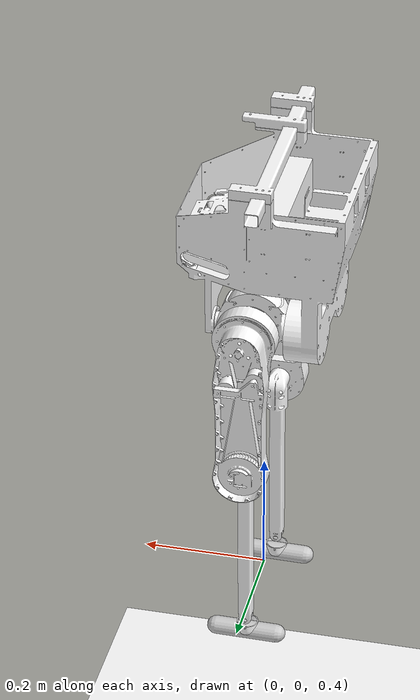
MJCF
<mujoco model="biped">
  <compiler angle="radian" meshdir="meshes" autolimits="true"/>
  <option iterations="3" ls_iterations="5" integrator="Euler">
    <flag eulerdamp="disable"/>
  </option>
  <default/>

  <visual>
    <headlight diffuse=".8 .8 .8" ambient=".2 .2 .2" specular="1 1 1"/>
    <rgba force="1 0 0 1"/>
    <global azimuth="120" elevation="-20"/>
    <map force="0.01"/>
    <scale forcewidth="0.3" contactwidth="0.5" contactheight="0.2"/>
    <quality shadowsize="8192"/>
  </visual>
  <asset>
    <mesh name="base_link" file="base_link.STL"/>
    <mesh name="R_SHOULDER" file="R_SHOULDER.STL"/>
    <mesh name="R_UPPER_LEG" file="R_UPPER_LEG.STL"/>
    <mesh name="R_LOWER_LEG" file="R_LOWER_LEG.STL"/>
    <mesh name="R_FOOT" file="R_FOOT.STL"/>
    <mesh name="L_SHOULDER" file="L_SHOULDER.STL"/>
    <mesh name="L_UPPER_LEG" file="L_UPPER_LEG.STL"/>
    <mesh name="L_LOWER_LEG" file="L_LOWER_LEG.STL"/>
    <mesh name="L_FOOT" file="L_FOOT.STL"/>
    <texture type="skybox" builtin="gradient" rgb1="1 1 1" rgb2="1 1 1" width="800" height="800"/>
    <texture type="2d" name="groundplane" builtin="checker" mark="edge" rgb1="1 1 1" rgb2="1 1 1" markrgb="0 0 0"
      width="300" height="300"/>
    <material name="groundplane" texture="groundplane" texuniform="true" texrepeat="5 5" reflectance="0"/>

  </asset>
      <sensor>
    <gyro name="gyro" site="imu_location_vectornav" />
    <accelerometer name="accelerometer" site="imu_location_vectornav" />
    <velocimeter site="imu_location" name="local_linvel"/>
    <framezaxis objtype="site" objname="imu_location" name="upvector"/>
    <framexaxis objtype="site" objname="imu_location" name="forwardvector"/>
    <framelinvel objtype="site" objname="imu_location" name="global_linvel"/>
    <frameangvel objtype="site" objname="imu_location" name="global_angvel"/>
    <framepos objtype="site" objname="imu_location" name="position"/>
    <framequat objtype="site" objname="imu_location" name="orientation"/>
    <framelinvel objtype="site" objname="l_foot" name="l_foot_global_linvel"/>
    <framelinvel objtype="site" objname="r_foot" name="r_foot_global_linvel"/>
    <framexaxis objtype="site" objname="l_foot" name="l_foot_upvector"/>
    <framexaxis objtype="site" objname="r_foot" name="r_foot_upvector"/>
    <framepos objtype="site" objname="l_foot" name="l_foot_pos"/>
    <framepos objtype="site" objname="r_foot" name="r_foot_pos"/>

  </sensor>

  <worldbody>
    <geom name="floor" size="0 0 0.01" type="plane" material="groundplane" contype="1" conaffinity="0" priority="1" friction="0.6" condim="3"/>

    <camera name="track" pos="1.805 -2.105 1.0" xyaxes="0.814 0.580 0.000 -0.140 0.196 0.971"/>

    <body name="base_link" pos="0.0 0.0 1.0">
    <camera name="front" pos="1.210 -0.435 0.32" xyaxes="0.342 0.940 0.000 -0.321 0.117 0.940" mode="trackcom"/>
    <inertial pos="-0.025692 0 0.025162" quat="1. 0. 0. 0." mass="4.808222" diaginertia="0.056665 0.046196 0.042241" />
    <geom name="base_link" type="mesh" contype="0" conaffinity="0" rgba="1 1 1 1" mesh="base_link"/>
    <joint armature="0" damping="0" limited="false" name="root" pos="0 0 0" stiffness="0" type="free"/>
    <site name="imu_location" pos="0 0 0" euler="0 0 0" size="0.01" type="sphere" rgba="1 0 0 1"/>
    <site name="imu_location_vectornav" pos="0 0 0" euler="-3.141592 0 0" size="0.01" type="sphere" rgba="1 0 0 1"/>

    <body name="L_SHOULDER" pos="0.005 0.07 -0.091">
      <inertial pos="-0.00039 -0.022865 0.000966" quat="0.5 0.5 0.5 0.5" mass="0.52963" diaginertia="0.000691 0.000491 0.000368"/>
      <joint name="L_HAA" pos="0 0 0" axis="1 0 0" range="-0.25 0.25" limited="true" armature="0.001"/>
      <geom type="mesh" contype="0" conaffinity="0" rgba="1 1 1 1" mesh="L_SHOULDER"/>

      <body name="L_UPPER_LEG">
        <inertial pos="2.3e-05 0.054429 -0.064678" quat="1 0 0 0" mass="0.958425" diaginertia="0.009526 0.00948302 0.00101198"/>
        <joint name="L_HFE" pos="0 0 0" axis="0 1 0" range="-1.5 1.5" limited="true" armature="0.001"/>
        <geom type="mesh" contype="0" conaffinity="0" rgba="1 1 1 1" mesh="L_UPPER_LEG"/>

        <body name="L_LOWER_LEG" pos="0 0.0594 -0.234046">
          <inertial pos="0.000245 -0.019422 -0.122672" mass="0.115744" diaginertia="0.001579 0.001579 2.1e-05"/>
          <joint name="L_KFE" pos="0 0 0" axis="0 1 0" limited="true" range="-2.2 2.2" armature="0.001"/>
          <geom type="mesh" contype="0" conaffinity="0" rgba="1 1 1 1" mesh="L_LOWER_LEG"/>

          <body name="L_FOOT" pos="0 -0.01975 -0.3247">
            <inertial pos="-8.2e-05 0 -0.002961" quat="0.5 0.5 0.5 0.5" mass="0.029476" diaginertia="4.8e-05 4.8e-05 1e-06"/>
            <joint name="L_ANKLE" pos="0 0 0" axis="0 1 0" range="-1.6 1.6" limited="true" armature="0.001"/>
            <geom type="mesh" contype="0" conaffinity="0" rgba="1 1 1 1" mesh="L_FOOT"/>
            <geom name="L_FOOT" friction="1. 0.3 0.3" size="0.015 0.05" pos="0 0 -0.01" quat="0.710914 0 0.703279 0"  type="capsule" rgba="0.8 0.8 0.8 1"/>
            <site name="l_foot" quat="0.710914 0 0.703279 0"/>
          </body> <!-- L_FOOT -->

        </body> <!-- L_LOWER_LEG -->

      </body> <!-- L_UPPER_LEG -->

    </body> <!-- L_SHOULDER -->

    <body name="R_SHOULDER" pos="0.005 -0.07 -0.091">
      <inertial pos="-0.00039 0.022865 -0.000966" quat="0.5 0.5 0.5 0.5" mass="0.52963" diaginertia="0.000691 0.000491 0.000368"/>
      <joint name="R_HAA" pos="0 0 0" axis="1 0 0" range="-0.25 0.25" limited="true" armature="0.001"/>
      <geom type="mesh" contype="0" conaffinity="0" rgba="1 1 1 1" mesh="R_SHOULDER"/>
      <body name="R_UPPER_LEG">
        <inertial pos="-2.3e-05 -0.054429 -0.064678" mass="0.95843" diaginertia="0.009526 0.009483 0.001012"/>
        <joint name="R_HFE" pos="0 0 0" axis="0 1 0" range="-1.5 1.5" limited="true" armature="0.001"/>
        <geom type="mesh" contype="0" conaffinity="0" rgba="1 1 1 1" mesh="R_UPPER_LEG"/>

        <body name="R_LOWER_LEG" pos="0 -0.0641789 -0.232529">
          <inertial pos="-0.000245 0.0242 -0.12419" mass="0.11574" diaginertia="0.001579 0.001579 2.1e-05"/>
          <joint name="R_KFE" pos="0 0 0" axis="0 1 0" range="-2.2 2.2" limited="true" armature="0.001"/>
          <geom type="mesh" contype="0" conaffinity="0" rgba="1 1 1 1" mesh="R_LOWER_LEG"/>

          <body name="R_FOOT" pos="0 0.0245289 -0.326217">
            <inertial pos="0 0 -0.002962" quat="0.5 0.5 0.5 0.5" mass="0.029476" diaginertia="4.8e-05 4.8e-05 1e-06"/>
            <joint name="R_ANKLE" pos="0 0 0" axis="0 1 0" range="-1.6 1.6" limited="true" armature="0.001"/>
            <geom type="mesh" contype="0" conaffinity="0" rgba="1 1 1 1" mesh="R_FOOT"/>
            <geom name="R_FOOT" friction="1. 0.3 0.3" size="0.015 0.05" pos="0 0 -0.01" quat="0.710914 0 0.703279 0"  type="capsule" rgba="0.8 0.8 0.8 1"/>
            <site name="r_foot" quat="0.710914 0 0.703279 0"/>
          </body> <!-- R_FOOT -->

          </body> <!-- R_LOWER_LEG -->

        </body> <!-- R_UPPER_LEG -->

      </body> <!-- R_SHOULDER -->

    </body> <!--  base_link -->
  </worldbody>

    <actuator>

      <position name="L_HAA" joint="L_HAA" kp="38.1" kv="3.18"/>
      <position name="L_HFE" joint="L_HFE" kp="38.1" kv="3.18"/>
      <position name="L_KFE" joint="L_KFE" kp="38.1" kv="0.95"/>
      <position name="L_ANKLE" joint="L_ANKLE" kp="0.1" kv="0.005"/>

      <position name="R_HAA" joint="R_HAA" kp="38.1" kv="3.18"/>
      <position name="R_HFE" joint="R_HFE" kp="38.1" kv="3.18"/>
      <position name="R_KFE" joint="R_KFE" kp="38.1" kv="0.95"/>
      <position name="R_ANKLE" joint="R_ANKLE" kp="0.1" kv="0.005"/>

    </actuator>

    <keyframe>
      <key name="home"
          qpos="
        0 0 0.7
        1 0 0 0
        0.0 -0.325 0.4915 -0.175
        0.0 -0.325 0.4915 -0.175"
          ctrl="
        0.0 -0.325 0.4915 -0.175
        0.0 -0.325 0.4915 -0.175"/>
  </keyframe>

</mujoco>
